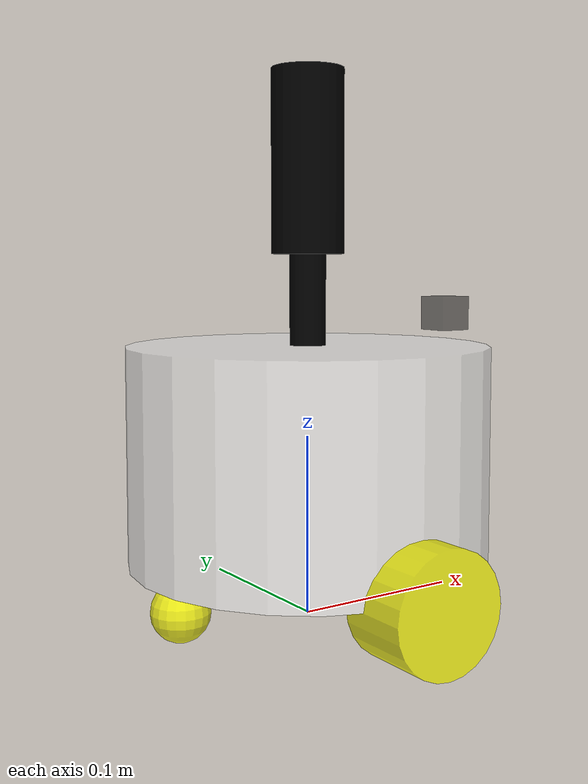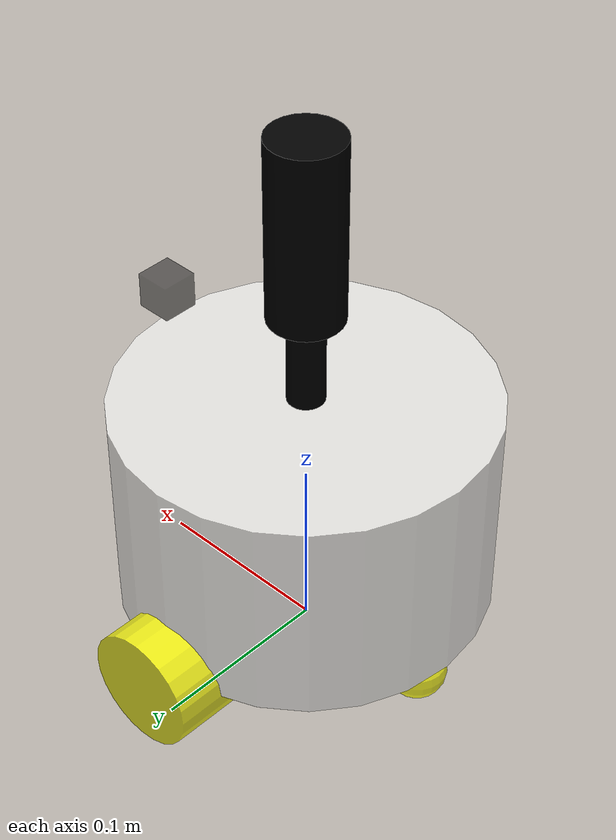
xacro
<?xml version="1.0" ?>
<robot xmlns:xacro="http://www.ros.org/wiki/xacro" name="fishbot">
    <!-- base 部分 -->
    <xacro:include filename="$(find chapt6_rob_descrip)/urdf/fishbot/base.urdf.xacro"/>
    <!-- 传感器部分 -->
    <xacro:include filename="$(find chapt6_rob_descrip)/urdf/fishbot/sensor/imu.urdf.xacro"/>
    <xacro:include filename="$(find chapt6_rob_descrip)/urdf/fishbot/sensor/camera.urdf.xacro"/>
    <xacro:include filename="$(find chapt6_rob_descrip)/urdf/fishbot/sensor/laser.urdf.xacro"/>
    <!-- 执行器部分 -->
    <xacro:include filename="$(find chapt6_rob_descrip)/urdf/fishbot/actuator/wheel.urdf.xacro"/>
    <xacro:include filename="$(find chapt6_rob_descrip)/urdf/fishbot/actuator/caster.urdf.xacro"/>
    <!-- 插件部分 -->
        <!-- 控制插件 -->
    <xacro:include filename="$(find chapt6_rob_descrip)/urdf/fishbot/plugins/gazebo_control_plugin.xacro"/>
        <!-- 传感器插件 -->
    <xacro:include filename="$(find chapt6_rob_descrip)/urdf/fishbot/plugins/gazebo_sensor_plugin.xacro"/>
        <!-- ros_control插件 -->
    <xacro:include filename="$(find chapt6_rob_descrip)/urdf/fishbot/fishbot.ros2_control.xacro"/>

    <!-- 机器人部分 -->
    <xacro:base_xacro length="0.12" radius="0.10"/>
    <xacro:imu_xacro xyz="0.0 0.0 0.02"/>
    <xacro:camera_xacro xyz="0.10 0.0 0.075"/>
    <xacro:laser_xacro xyz="0.0 0.0 0.11"/>
    <xacro:wheel_xacro wheel_name="left_wheel"  xyz="0.0  0.10 -0.06"/>
    <xacro:wheel_xacro wheel_name="right_wheel" xyz="0.0 -0.10 -0.06"/>
    <xacro:caster_xacro caster_name="front_wheel"  xyz=" 0.08  0.0 -0.076"/>
    <xacro:caster_xacro caster_name="back_wheel"   xyz="-0.08  0.0 -0.076"/>

        <!-- 机器人控制插件 -->
        <!-- 机器人传感器插件 -->
    <xacro:gazebo_sensor_plugin />
        <!-- 机器人ros_control插件 -->
    <xacro:fishbot_ros2_control />

</robot>

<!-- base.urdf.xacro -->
<robot xmlns:xacro ="http://www.ros.org/wiki/xacro">
<xacro:include filename="$(find chapt6_rob_descrip)/urdf/fishbot/common_inertia.urdf.xacro"/>

    <xacro:macro name="base_xacro" params="length radius">
        <link name="base_footprint"/>

        <joint name="base_footprint2base_link" type="fixed">
            <parent link="base_footprint"/>
            <child link="base_link"/>
            <origin xyz="0.0 0.0 ${length/2.0+0.032-0.001}" rpy="0.0 0.0 0.0"/>
        </joint>

        <link name="base_link">
            <visual>
                <origin xyz="0.0 0.0 0.0" rpy="0.0 0.0 0.0" />
                <geometry>
                    <cylinder radius="${radius}" length="${length}"/>
                </geometry>
                <material name="white">
                    <color rgba="1.0 1.0 1.0 0.6" />
                </material>
            </visual>
            <collision>
                <origin xyz="0.0 0.0 0.0" rpy="0.0 0.0 0.0" />
                <geometry>
                    <cylinder radius="${radius}" length="${length}"/>
                </geometry>
                <material name="white">
                    <color rgba="1.0 1.0 1.0 0.6" />
                </material>
            </collision>

            <xacro:cylinder_inertia m="1.0" r="${radius}" h="${length}"/>
        </link>

    </xacro:macro>

</robot>

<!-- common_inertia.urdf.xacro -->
<robot xmlns:xacro="http://ros.org/wiki/xacro">

    <xacro:macro name="box_inertia" params="m w h d">
        <inertial>
            <mass value="${m}" />
            <inertia ixx="${(m/12) * (h*h + d*d)}" ixy="0.0" ixz="0.0" iyy="${(m/12) * (w*w + d*d)}" iyz="0.0" izz="${(m/12) * (w*w + h*h)}" />
        </inertial>
    </xacro:macro>

    <xacro:macro name="cylinder_inertia" params="m r h">
        <inertial>
            <mass value="${m}" />
            <inertia ixx="${(m/12) * (3*r*r + h*h)}" ixy="0" ixz="0" iyy="${(m/12) * (3*r*r + h*h)}" iyz="0" izz="${(m/2) * (r*r)}" />
        </inertial>
    </xacro:macro>

    <xacro:macro name="sphere_inertia" params="m r">
        <inertial>
            <mass value="${m}" />
            <inertia ixx="${(2/5) * m * (r*r)}" ixy="0.0" ixz="0.0" iyy="${(2/5) * m * (r*r)}" iyz="0.0" izz="${(2/5) * m * (r*r)}" />
        </inertial>
    </xacro:macro>

</robot>

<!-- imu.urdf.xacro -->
<robot xmlns:xacro ="http://www.ros.org/wiki/xacro">
<xacro:include filename="$(find chapt6_rob_descrip)/urdf/fishbot/common_inertia.urdf.xacro"/>
    <xacro:macro name="imu_xacro" params="xyz">
        <link name="imu_link">
            <visual>
                <origin xyz="0.0 0.0 0.0" rpy="0.0 0.0 0.0" />
                <geometry>
                    <box size="0.02 0.02 0.02" />
                </geometry>
                <material name="black">
                    <color rgba="0.0 0.0 0.0 0.5" />
                </material>
            </visual>
            <collision>
                <origin xyz="0.0 0.0 0.0" rpy="0.0 0.0 0.0" />
                <geometry>
                    <box size="0.02 0.02 0.02" />
                </geometry>
                <material name="black">
                    <color rgba="0.0 0.0 0.0 0.5" />
                </material>
            </collision>
            <xacro:box_inertia m="0.05" w="0.02" h="0.02" d="0.02"/>
        </link>

        <joint name="imu_joint" type="fixed">
            <parent link="base_link"/>
            <child link="imu_link"/>
            <origin xyz="${xyz}" rpy="0.0 0.0 0.0"/>
        </joint>
    </xacro:macro>

</robot>

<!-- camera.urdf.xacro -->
<robot xmlns:xacro ="http://www.ros.org/wiki/xacro">
<xacro:include filename="$(find chapt6_rob_descrip)/urdf/fishbot/common_inertia.urdf.xacro"/>
    <xacro:macro name="camera_xacro" params="xyz">

        <joint name="camera_joint" type="fixed">
            <parent link="base_link"/>
            <child link="camera_link"/>
            <origin xyz="${xyz}" rpy="0.0 0.0 0.0"/>
        </joint>

        <link name="camera_link">
            <visual>
                <origin xyz="0.0 0.0 0.0" rpy="0.0 0.0 0.0" />
                <geometry>
                    <box size="0.02 0.02 0.02" />
                </geometry>
                <material name="black">
                    <color rgba="0.0 0.0 0.0 0.5" />
                </material>
            </visual>
            <collision>
                <origin xyz="0.0 0.0 0.0" rpy="0.0 0.0 0.0" />
                <geometry>
                    <box size="0.02 0.02 0.02" />
                </geometry>
                <material name="black">
                    <color rgba="0.0 0.0 0.0 0.5" />
                </material>
            </collision>
            <xacro:box_inertia m="0.1" w="0.02" h="0.10" d="0.02" />
        </link>

        <joint name="camera_optical_joint" type="fixed">
            <parent link="camera_link"/>
            <child link="camera_optical_link"/>
            <origin xyz="0.0 0.0 0.0" rpy="${-pi/2} 0.0 ${-pi/2}"/>
        </joint>

        <link name="camera_optical_link"></link>

    </xacro:macro>

</robot>

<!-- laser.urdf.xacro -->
<robot xmlns:xacro ="http://www.ros.org/wiki/xacro">
<xacro:include filename="$(find chapt6_rob_descrip)/urdf/fishbot/common_inertia.urdf.xacro"/>
    <xacro:macro name="laser_xacro" params="xyz">
        <gazebo reference="laser_cylinder_link">
            <material>Gazebo/Black</material>
        </gazebo>
        <gazebo reference="laser_link">
            <material>Gazebo/Black</material>
        </gazebo>
        <link name="laser_cylinder_link">
            <visual>
                <origin xyz="0.0 0.0 0.0" rpy="0.0 0.0 0.0" />
                <geometry>
                    <cylinder radius="0.01" length="0.10"/>
                </geometry>
                <material name="black">
                    <color rgba="0.0 0.0 0.0 1.0" />
                </material>
            </visual>
            <collision>
                <origin xyz="0.0 0.0 0.0" rpy="0.0 0.0 0.0" />
                <geometry>
                    <cylinder radius="0.01" length="0.10"/>
                </geometry>
                <material name="black">
                    <color rgba="0.0 0.0 0.0 1.0" />
                </material>
            </collision>
            <xacro:cylinder_inertia m="0.05" r="0.01" h="0.10"/>
        </link>

        <link name="laser_link">
            <visual>
                <origin xyz="0.0 0.0 0.0" rpy="0.0 0.0 0.0" />
                <geometry>
                    <cylinder radius="0.02" length="0.10"/>
                </geometry>
                <material name="black">
                    <color rgba="0.0 0.0 0.0 1.0" />
                </material>
            </visual>
            <collision>
                <origin xyz="0.0 0.0 0.0" rpy="0.0 0.0 0.0" />
                <geometry>
                    <cylinder radius="0.02" length="0.10"/>
                </geometry>
                <material name="black">
                    <color rgba="0.0 0.0 0.0 1.0" />
                </material>
            </collision>
            <xacro:cylinder_inertia m="0.10" r="0.02" h="0.02"/>
        </link>

        <joint name="laser_joint" type="fixed">
            <parent link="laser_cylinder_link"/>
            <child link="laser_link"/>
            <origin xyz="0.0 0.0 0.05" rpy="0.0 0.0 0.0"/>
        </joint>

        <joint name="laser_cylinder_joint" type="fixed">
            <parent link="base_link"/>
            <child link="laser_cylinder_link"/>
            <origin xyz="${xyz}" rpy="0.0 0.0 0.0"/>
        </joint>
    </xacro:macro>

</robot>

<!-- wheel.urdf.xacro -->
<robot xmlns:xacro ="http://www.ros.org/wiki/xacro">
<xacro:include filename="$(find chapt6_rob_descrip)/urdf/fishbot/common_inertia.urdf.xacro"/>
    <xacro:macro name="wheel_xacro" params="wheel_name xyz">
        <gazebo reference="${wheel_name}_link">
            <mu1 value="20.0" /><!--切向摩擦系数-->
            <mu2 value="20.0" /><!--法向摩擦系数-->
            <kp value="1000000000.0" /><!--接触刚度-->
            <kd value="1.0" /><!--接触阻尼-->
        </gazebo>
        <link name="${wheel_name}_link">
            <visual>
                <origin xyz="0.0 0.0 0.0" rpy="1.57079 0.0 0.0" />
                <geometry>
                    <cylinder radius="0.032" length="0.04" />
                </geometry>
                <material name="yellow">
                    <color rgba="1.0 1.0 0.0 0.8" />
                </material>
            </visual>
            <collision>
                <origin xyz="0.0 0.0 0.0" rpy="1.57079 0.0 0.0" />
                <geometry>
                    <cylinder radius="0.032" length="0.04" />
                </geometry>
                <material name="yellow">
                    <color rgba="1.0 1.0 0.0 0.8" />
                </material>
            </collision>
            <xacro:cylinder_inertia m="0.05" r="0.032" h="0.04" />
        </link>

        <joint name="${wheel_name}_joint" type="continuous">
            <parent link="base_link"/>
            <child link="${wheel_name}_link"/>
            <origin xyz="${xyz}" rpy="0.0 0.0 0.0"/>
            <axis xyz="0.0 1.0 0.0"/>
        </joint>
    </xacro:macro>

</robot>

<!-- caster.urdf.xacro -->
<robot xmlns:xacro ="http://www.ros.org/wiki/xacro">
<xacro:include filename="$(find chapt6_rob_descrip)/urdf/fishbot/common_inertia.urdf.xacro"/>
    <xacro:macro name="caster_xacro" params="caster_name xyz">
        <gazebo reference="${caster_name}_link">
            <mu1 value="0.0"/><!--切向摩擦系数-->
            <mu2 value="0.0"/><!--法向摩擦系数-->
            <kp value="1000000000.0"/><!--接触刚度-->
            <kd value="1.0"/><!--接触阻尼-->
        </gazebo>
        <link name="${caster_name}_link">
            <visual>
                <origin xyz="0.0 0.0 0.0" rpy="0.0 0.0 0.0" />
                <geometry>
                    <sphere radius="0.016"/>
                </geometry>
                <material name="yellow">
                    <color rgba="1.0 1.0 0.0 0.8" />
                </material>
            </visual>
            <collision>
                <origin xyz="0.0 0.0 0.0" rpy="0.0 0.0 0.0" />
                <geometry>
                    <sphere radius="0.016"/>
                </geometry>
                <material name="yellow">
                    <color rgba="1.0 1.0 0.0 0.8" />
                </material>
            </collision>
            <xacro:sphere_inertia m="0.1" r="0.016" />
        </link>

        <joint name="${caster_name}_joint" type="fixed">
            <parent link="base_link"/>
            <child link="${caster_name}_link"/>
            <origin xyz="${xyz}" rpy="0.0 0.0 0.0"/>
        </joint>
    </xacro:macro>

</robot>
